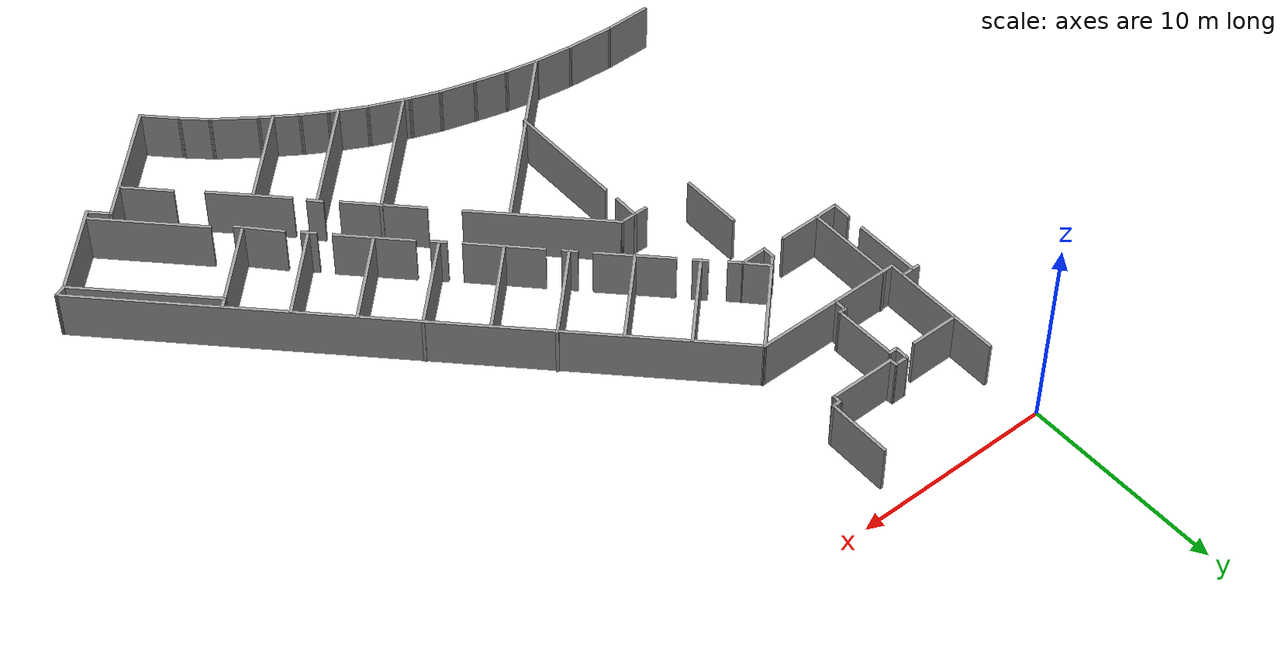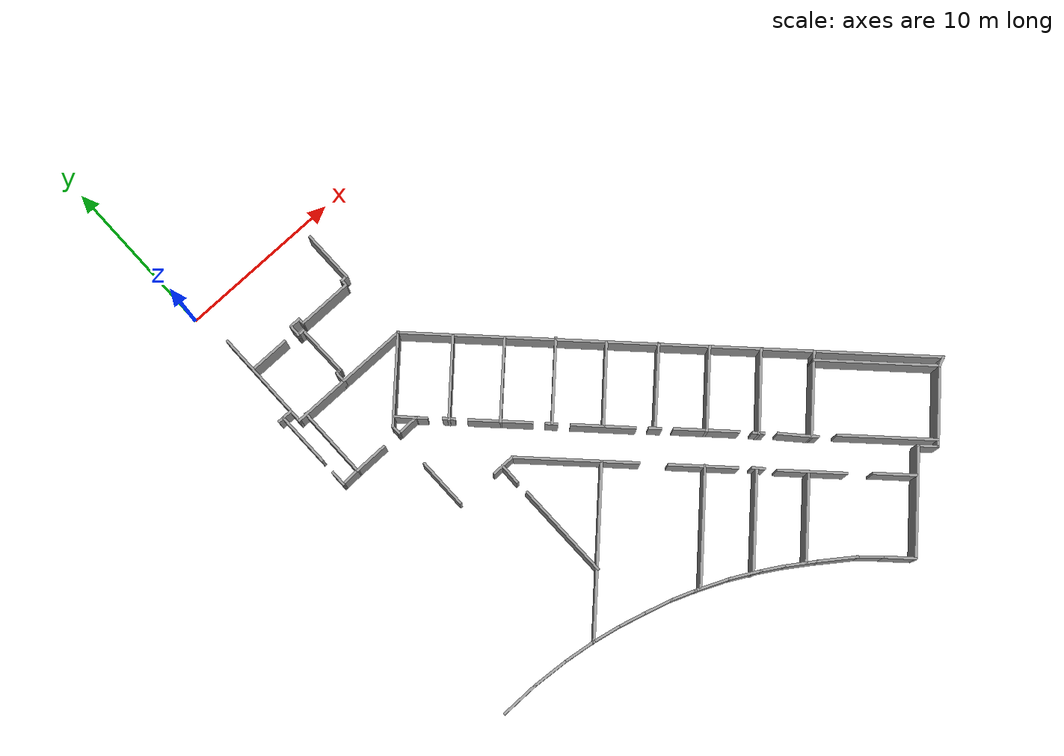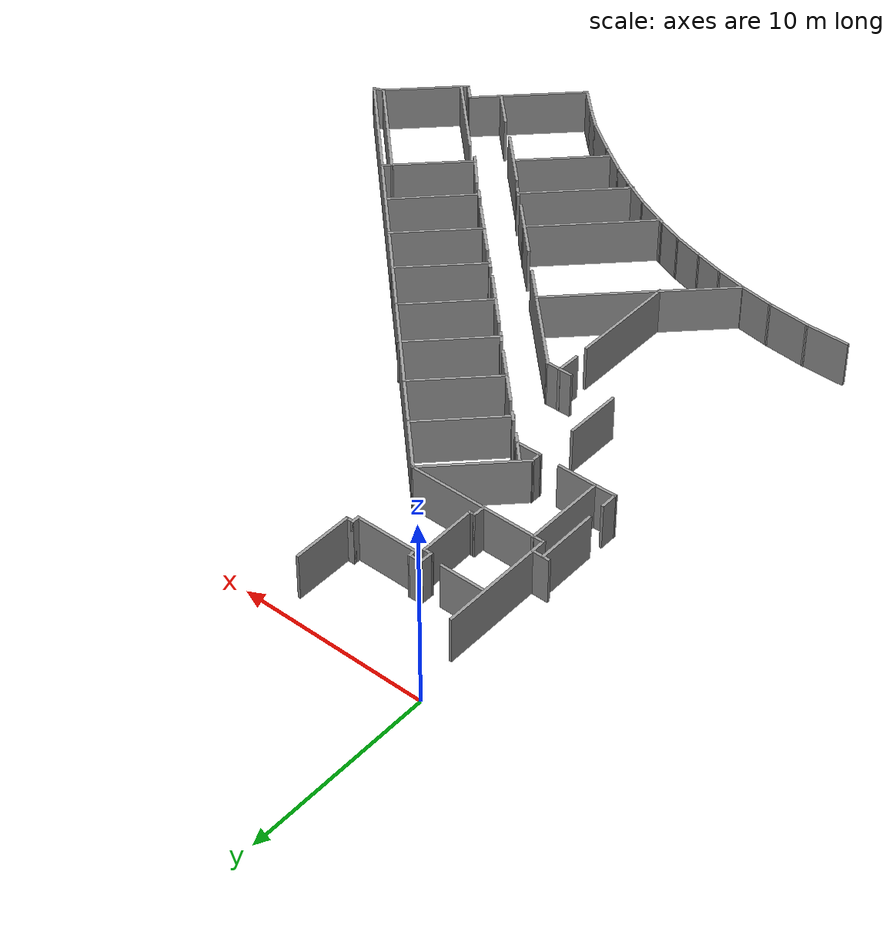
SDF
<sdf version="1.7">
 <model name="TI_1">
  <pose>-0.810812 4.85868 0 0 -0 0</pose>
  <link name="Wall_412">
   <collision name="Wall_412_Collision">
    <geometry><box><size>3.25 0.15 2.5</size></box></geometry>
    <pose>0 0 1.25 0 -0 0</pose>
   </collision>
   <visual name="Wall_412_Visual">
    <pose>0 0 1.25 0 -0 0</pose>
    <geometry><box><size>3.25 0.15 2.5</size></box></geometry>
    <material>
     <script><uri>file://media/materials/scripts/gazebo.material</uri><name>Gazebo/Grey</name></script>
     <ambient>1 1 1 1</ambient>
    </material>
    <meta><layer>0</layer></meta>
   </visual>
   <pose>8.80471 -7.66478 0 0 -0 -1.5708</pose>
  </link>
  <link name="Wall_413">
   <collision name="Wall_413_Collision">
    <geometry><box><size>0.5 0.15 2.5</size></box></geometry>
    <pose>0 0 1.25 0 -0 0</pose>
   </collision>
   <visual name="Wall_413_Visual">
    <pose>0 0 1.25 0 -0 0</pose>
    <geometry><box><size>0.5 0.15 2.5</size></box></geometry>
    <material>
     <script><uri>file://media/materials/scripts/gazebo.material</uri><name>Gazebo/Grey</name></script>
     <ambient>1 1 1 1</ambient>
    </material>
    <meta><layer>0</layer></meta>
   </visual>
   <pose>8.62971 -9.21478 0 0 -0 3.14159</pose>
  </link>
  <link name="Wall_414">
   <collision name="Wall_414_Collision">
    <geometry><box><size>0.5 0.15 2.5</size></box></geometry>
    <pose>0 0 1.25 0 -0 0</pose>
   </collision>
   <visual name="Wall_414_Visual">
    <pose>0 0 1.25 0 -0 0</pose>
    <geometry><box><size>0.5 0.15 2.5</size></box></geometry>
    <material>
     <script><uri>file://media/materials/scripts/gazebo.material</uri><name>Gazebo/Grey</name></script>
     <ambient>1 1 1 1</ambient>
    </material>
    <meta><layer>0</layer></meta>
   </visual>
   <pose>8.45471 -9.38978 0 0 -0 -1.5708</pose>
  </link>
  <link name="Wall_415">
   <collision name="Wall_415_Collision">
    <geometry><box><size>3.39279 0.15 2.5</size></box></geometry>
    <pose>0 0 1.25 0 -0 0</pose>
   </collision>
   <visual name="Wall_415_Visual">
    <pose>0 0 1.25 0 -0 0</pose>
    <geometry><box><size>3.39279 0.15 2.5</size></box></geometry>
    <material>
     <script><uri>file://media/materials/scripts/gazebo.material</uri><name>Gazebo/Grey</name></script>
     <ambient>1 1 1 1</ambient>
    </material>
    <meta><layer>0</layer></meta>
   </visual>
   <pose>6.83332 -9.56837 0 0 -0 -3.13938</pose>
  </link>
  <link name="Wall_416">
   <collision name="Wall_416_Collision">
    <geometry><box><size>0.477102 0.15 2.5</size></box></geometry>
    <pose>0 0 1.25 0 -0 0</pose>
   </collision>
   <visual name="Wall_416_Visual">
    <pose>0 0 1.25 0 -0 0</pose>
    <geometry><box><size>0.477102 0.15 2.5</size></box></geometry>
    <material>
     <script><uri>file://media/materials/scripts/gazebo.material</uri><name>Gazebo/Grey</name></script>
     <ambient>1 1 1 1</ambient>
    </material>
    <meta><layer>0</layer></meta>
   </visual>
   <pose>5.19712 -9.40907 0 0 -0 1.66146</pose>
  </link>
  <link name="Wall_417">
   <collision name="Wall_417_Collision">
    <geometry><box><size>0.757096 0.15 2.5</size></box></geometry>
    <pose>0 0 1.25 0 -0 0</pose>
   </collision>
   <visual name="Wall_417_Visual">
    <pose>0 0 1.25 0 -0 0</pose>
    <geometry><box><size>0.757096 0.15 2.5</size></box></geometry>
    <material>
     <script><uri>file://media/materials/scripts/gazebo.material</uri><name>Gazebo/Grey</name></script>
     <ambient>1 1 1 1</ambient>
    </material>
    <meta><layer>0</layer></meta>
   </visual>
   <pose>4.87876 -9.2462 0 0 -0 3.14159</pose>
  </link>
  <link name="Wall_418">
   <collision name="Wall_418_Collision">
    <geometry><box><size>0.801686 0.15 2.5</size></box></geometry>
    <pose>0 0 1.25 0 -0 0</pose>
   </collision>
   <visual name="Wall_418_Visual">
    <pose>0 0 1.25 0 -0 0</pose>
    <geometry><box><size>0.801686 0.15 2.5</size></box></geometry>
    <material>
     <script><uri>file://media/materials/scripts/gazebo.material</uri><name>Gazebo/Grey</name></script>
     <ambient>1 1 1 1</ambient>
    </material>
    <meta><layer>0</layer></meta>
   </visual>
   <pose>4.56781 -9.57195 0 0 -0 -1.59352</pose>
  </link>
  <link name="Wall_419">
   <collision name="Wall_419_Collision">
    <geometry><box><size>0.52018 0.15 2.5</size></box></geometry>
    <pose>0 0 1.25 0 -0 0</pose>
   </collision>
   <visual name="Wall_419_Visual">
    <pose>0 0 1.25 0 -0 0</pose>
    <geometry><box><size>0.52018 0.15 2.5</size></box></geometry>
    <material>
     <script><uri>file://media/materials/scripts/gazebo.material</uri><name>Gazebo/Grey</name></script>
     <ambient>1 1 1 1</ambient>
    </material>
    <meta><layer>0</layer></meta>
   </visual>
   <pose>4.7455 -9.89771 0 0 -0 0</pose>
  </link>
  <link name="Wall_423">
   <collision name="Wall_423_Collision">
    <geometry><box><size>6.25 0.15 2.5</size></box></geometry>
    <pose>0 0 1.25 0 -0 0</pose>
   </collision>
   <visual name="Wall_423_Visual">
    <pose>0 0 1.25 0 -0 0</pose>
    <geometry><box><size>6.25 0.15 2.5</size></box></geometry>
    <material>
     <script><uri>file://media/materials/scripts/gazebo.material</uri><name>Gazebo/Grey</name></script>
     <ambient>1 1 1 1</ambient>
    </material>
    <meta><layer>0</layer></meta>
   </visual>
   <pose>1.36092 -10.5303 0 0 -0 -1.5708</pose>
  </link>
  <link name="Wall_424">
   <collision name="Wall_424_Collision">
    <geometry><box><size>3.5 0.15 2.5</size></box></geometry>
    <pose>0 0 1.25 0 -0 0</pose>
   </collision>
   <visual name="Wall_424_Visual">
    <pose>0 0 1.25 0 -0 0</pose>
    <geometry><box><size>3.5 0.15 2.5</size></box></geometry>
    <material>
     <script><uri>file://media/materials/scripts/gazebo.material</uri><name>Gazebo/Grey</name></script>
     <ambient>1 1 1 1</ambient>
    </material>
    <meta><layer>0</layer></meta>
   </visual>
   <pose>3.03593 -13.5803 0 0 -0 0</pose>
  </link>
  <link name="Wall_425">
   <collision name="Wall_425_Collision">
    <geometry><box><size>0.75 0.15 2.5</size></box></geometry>
    <pose>0 0 1.25 0 -0 0</pose>
   </collision>
   <visual name="Wall_425_Visual">
    <pose>0 0 1.25 0 -0 0</pose>
    <geometry><box><size>0.75 0.15 2.5</size></box></geometry>
    <material>
     <script><uri>file://media/materials/scripts/gazebo.material</uri><name>Gazebo/Grey</name></script>
     <ambient>1 1 1 1</ambient>
    </material>
    <meta><layer>0</layer></meta>
   </visual>
   <pose>4.71092 -13.2803 0 0 -0 1.5708</pose>
  </link>
  <link name="Wall_426">
   <collision name="Wall_426_Collision">
    <geometry><box><size>0.25 0.15 2.5</size></box></geometry>
    <pose>0 0 1.25 0 -0 0</pose>
   </collision>
   <visual name="Wall_426_Visual">
    <pose>0 0 1.25 0 -0 0</pose>
    <geometry><box><size>0.25 0.15 2.5</size></box></geometry>
    <material>
     <script><uri>file://media/materials/scripts/gazebo.material</uri><name>Gazebo/Grey</name></script>
     <ambient>1 1 1 1</ambient>
    </material>
    <meta><layer>0</layer></meta>
   </visual>
   <pose>4.76093 -12.9803 0 0 -0 0</pose>
  </link>
  <link name="Wall_427">
   <collision name="Wall_427_Collision">
    <geometry><box><size>0.327028 0.15 2.5</size></box></geometry>
    <pose>0 0 1.25 0 -0 0</pose>
   </collision>
   <visual name="Wall_427_Visual">
    <pose>0 0 1.25 0 -0 0</pose>
    <geometry><box><size>0.327028 0.15 2.5</size></box></geometry>
    <material>
     <script><uri>file://media/materials/scripts/gazebo.material</uri><name>Gazebo/Grey</name></script>
     <ambient>1 1 1 1</ambient>
    </material>
    <meta><layer>0</layer></meta>
   </visual>
   <pose>4.89944 -12.9804 0 0 -0 -0.000793</pose>
  </link>
  <link name="Wall_428">
   <collision name="Wall_428_Collision">
    <geometry><box><size>3.23327 0.15 2.5</size></box></geometry>
    <pose>0 0 1.25 0 -0 0</pose>
   </collision>
   <visual name="Wall_428_Visual">
    <pose>0 0 1.25 0 -0 0</pose>
    <geometry><box><size>3.23327 0.15 2.5</size></box></geometry>
    <material>
     <script><uri>file://media/materials/scripts/gazebo.material</uri><name>Gazebo/Grey</name></script>
     <ambient>1 1 1 1</ambient>
    </material>
    <meta><layer>0</layer></meta>
   </visual>
   <pose>4.95927 -11.4391 0 0 -0 1.5894</pose>
  </link>
  <link name="Wall_430">
   <collision name="Wall_430_Collision">
    <geometry><box><size>2.5 0.15 2.5</size></box></geometry>
    <pose>0 0 1.25 0 -0 0</pose>
   </collision>
   <visual name="Wall_430_Visual">
    <pose>0 0 1.25 0 -0 0</pose>
    <geometry><box><size>2.5 0.15 2.5</size></box></geometry>
    <material>
     <script><uri>file://media/materials/scripts/gazebo.material</uri><name>Gazebo/Grey</name></script>
     <ambient>1 1 1 1</ambient>
    </material>
    <meta><layer>0</layer></meta>
   </visual>
   <pose>2.55295 -9.6429 0 0 -0 0</pose>
  </link>
  <link name="Wall_440">
   <collision name="Wall_440_Collision">
    <geometry><box><size>1 0.15 2.5</size></box></geometry>
    <pose>0 0 1.25 0 -0 0</pose>
   </collision>
   <visual name="Wall_440_Visual">
    <pose>0 0 1.25 0 -0 0</pose>
    <geometry><box><size>1 0.15 2.5</size></box></geometry>
    <material>
     <script><uri>file://media/materials/scripts/gazebo.material</uri><name>Gazebo/Grey</name></script>
     <ambient>1 1 1 1</ambient>
    </material>
    <meta><layer>0</layer></meta>
   </visual>
   <pose>0.924667 -12.8553 0 0 -0 3.14159</pose>
  </link>
  <link name="Wall_443">
   <collision name="Wall_443_Collision">
    <geometry><box><size>3.37077 0.15 2.5</size></box></geometry>
    <pose>0 0 1.25 0 -0 0</pose>
   </collision>
   <visual name="Wall_443_Visual">
    <pose>0 0 1.25 0 -0 0</pose>
    <geometry><box><size>3.37077 0.15 2.5</size></box></geometry>
    <material>
     <script><uri>file://media/materials/scripts/gazebo.material</uri><name>Gazebo/Grey</name></script>
     <ambient>1 1 1 1</ambient>
    </material>
    <meta><layer>0</layer></meta>
   </visual>
   <pose>0.795781 -14.4948 0 0 -0 1.57538</pose>
  </link>
  <link name="Wall_445">
   <collision name="Wall_445_Collision">
    <geometry><box><size>4.5 0.15 2.5</size></box></geometry>
    <pose>0 0 1.25 0 -0 0</pose>
   </collision>
   <visual name="Wall_445_Visual">
    <pose>0 0 1.25 0 -0 0</pose>
    <geometry><box><size>4.5 0.15 2.5</size></box></geometry>
    <material>
     <script><uri>file://media/materials/scripts/gazebo.material</uri><name>Gazebo/Grey</name></script>
     <ambient>1 1 1 1</ambient>
    </material>
    <meta><layer>0</layer></meta>
   </visual>
   <pose>1.8867 -15.7111 0 0 -0 -1.5708</pose>
  </link>
  <link name="Wall_446">
   <collision name="Wall_446_Collision">
    <geometry><box><size>2.14401 0.15 2.5</size></box></geometry>
    <pose>0 0 1.25 0 -0 0</pose>
   </collision>
   <visual name="Wall_446_Visual">
    <pose>0 0 1.25 0 -0 0</pose>
    <geometry><box><size>2.14401 0.15 2.5</size></box></geometry>
    <material>
     <script><uri>file://media/materials/scripts/gazebo.material</uri><name>Gazebo/Grey</name></script>
     <ambient>1 1 1 1</ambient>
    </material>
    <meta><layer>0</layer></meta>
   </visual>
   <pose>2.88369 -17.8823 0 0 -0 0.003776</pose>
  </link>
  <link name="Wall_448">
   <collision name="Wall_448_Collision">
    <geometry><box><size>1 0.15 2.5</size></box></geometry>
    <pose>0 0 1.25 0 -0 0</pose>
   </collision>
   <visual name="Wall_448_Visual">
    <pose>0 0 1.25 0 -0 0</pose>
    <geometry><box><size>1 0.15 2.5</size></box></geometry>
    <material>
     <script><uri>file://media/materials/scripts/gazebo.material</uri><name>Gazebo/Grey</name></script>
     <ambient>1 1 1 1</ambient>
    </material>
    <meta><layer>0</layer></meta>
   </visual>
   <pose>0.793692 -17.4912 0 0 -0 -1.5708</pose>
  </link>
  <link name="Wall_449">
   <collision name="Wall_449_Collision">
    <geometry><box><size>1.24342 0.15 2.5</size></box></geometry>
    <pose>0 0 1.25 0 -0 0</pose>
   </collision>
   <visual name="Wall_449_Visual">
    <pose>0 0 1.25 0 -0 0</pose>
    <geometry><box><size>1.24342 0.15 2.5</size></box></geometry>
    <material>
     <script><uri>file://media/materials/scripts/gazebo.material</uri><name>Gazebo/Grey</name></script>
     <ambient>1 1 1 1</ambient>
    </material>
    <meta><layer>0</layer></meta>
   </visual>
   <pose>1.34019 -17.9012 0 0 -0 0.027535</pose>
  </link>
  <link name="Wall_451">
   <collision name="Wall_451_Collision">
    <geometry><box><size>4.25 0.15 2.5</size></box></geometry>
    <pose>0 0 1.25 0 -0 0</pose>
   </collision>
   <visual name="Wall_451_Visual">
    <pose>0 0 1.25 0 -0 0</pose>
    <geometry><box><size>4.25 0.15 2.5</size></box></geometry>
    <material>
     <script><uri>file://media/materials/scripts/gazebo.material</uri><name>Gazebo/Grey</name></script>
     <ambient>1 1 1 1</ambient>
    </material>
    <meta><layer>0</layer></meta>
   </visual>
   <pose>6.76093 -13.5803 0 0 -0 0</pose>
  </link>
  <link name="Wall_452">
   <collision name="Wall_452_Collision">
    <geometry><box><size>5.5 0.15 2.5</size></box></geometry>
    <pose>0 0 1.25 0 -0 0</pose>
   </collision>
   <visual name="Wall_452_Visual">
    <pose>0 0 1.25 0 -0 0</pose>
    <geometry><box><size>5.5 0.15 2.5</size></box></geometry>
    <material>
     <script><uri>file://media/materials/scripts/gazebo.material</uri><name>Gazebo/Grey</name></script>
     <ambient>1 1 1 1</ambient>
    </material>
    <meta><layer>0</layer></meta>
   </visual>
   <pose>6.91941 -15.4718 0 0 -0 -2.35619</pose>
  </link>
  <link name="Wall_453">
   <collision name="Wall_453_Collision">
    <geometry><box><size>0.679853 0.15 2.5</size></box></geometry>
    <pose>0 0 1.25 0 -0 0</pose>
   </collision>
   <visual name="Wall_453_Visual">
    <pose>0 0 1.25 0 -0 0</pose>
    <geometry><box><size>0.679853 0.15 2.5</size></box></geometry>
    <material>
     <script><uri>file://media/materials/scripts/gazebo.material</uri><name>Gazebo/Grey</name></script>
     <ambient>1 1 1 1</ambient>
    </material>
    <meta><layer>0</layer></meta>
   </visual>
   <pose>5.02529 -17.6282 0 0 -0 -1.58066</pose>
  </link>
  <link name="Wall_454">
   <collision name="Wall_454_Collision">
    <geometry><box><size>1.43457 0.15 2.5</size></box></geometry>
    <pose>0 0 1.25 0 -0 0</pose>
   </collision>
   <visual name="Wall_454_Visual">
    <pose>0 0 1.25 0 -0 0</pose>
    <geometry><box><size>1.43457 0.15 2.5</size></box></geometry>
    <material>
     <script><uri>file://media/materials/scripts/gazebo.material</uri><name>Gazebo/Grey</name></script>
     <ambient>1 1 1 1</ambient>
    </material>
    <meta><layer>0</layer></meta>
   </visual>
   <pose>5.66486 -17.882 0 0 -0 0.01739</pose>
  </link>
  <link name="Wall_455">
   <collision name="Wall_455_Collision">
    <geometry><box><size>1.37431 0.15 2.5</size></box></geometry>
    <pose>0 0 1.25 0 -0 0</pose>
   </collision>
   <visual name="Wall_455_Visual">
    <pose>0 0 1.25 0 -0 0</pose>
    <geometry><box><size>1.37431 0.15 2.5</size></box></geometry>
    <material>
     <script><uri>file://media/materials/scripts/gazebo.material</uri><name>Gazebo/Grey</name></script>
     <ambient>1 1 1 1</ambient>
    </material>
    <meta><layer>0</layer></meta>
   </visual>
   <pose>5.88265 -17.4297 0 0 -0 2.33684</pose>
  </link>
  <link name="Wall_490">
   <collision name="Wall_490_Collision">
    <geometry><box><size>2.39778 0.15 2.5</size></box></geometry>
    <pose>0 0 1.25 0 -0 0</pose>
   </collision>
   <visual name="Wall_490_Visual">
    <pose>0 0 1.25 0 -0 0</pose>
    <geometry><box><size>2.39778 0.15 2.5</size></box></geometry>
    <material>
     <script><uri>file://media/materials/scripts/gazebo.material</uri><name>Gazebo/Grey</name></script>
     <ambient>1 1 1 1</ambient>
    </material>
    <meta><layer>0</layer></meta>
   </visual>
   <pose>0.024104 -33.442 0 0 -0 0.00565</pose>
  </link>
  <link name="Wall_491">
   <collision name="Wall_491_Collision">
    <geometry><box><size>2.4038 0.15 2.5</size></box></geometry>
    <pose>0 0 1.25 0 -0 0</pose>
   </collision>
   <visual name="Wall_491_Visual">
    <pose>0 0 1.25 0 -0 0</pose>
    <geometry><box><size>2.4038 0.15 2.5</size></box></geometry>
    <material>
     <script><uri>file://media/materials/scripts/gazebo.material</uri><name>Gazebo/Grey</name></script>
     <ambient>1 1 1 1</ambient>
    </material>
    <meta><layer>0</layer></meta>
   </visual>
   <pose>2.27185 -33.5182 0 0 -0 -0.073315</pose>
  </link>
  <link name="Wall_492">
   <collision name="Wall_492_Collision">
    <geometry><box><size>1.98365 0.15 2.5</size></box></geometry>
    <pose>0 0 1.25 0 -0 0</pose>
   </collision>
   <visual name="Wall_492_Visual">
    <pose>0 0 1.25 0 -0 0</pose>
    <geometry><box><size>1.98365 0.15 2.5</size></box></geometry>
    <material>
     <script><uri>file://media/materials/scripts/gazebo.material</uri><name>Gazebo/Grey</name></script>
     <ambient>1 1 1 1</ambient>
    </material>
    <meta><layer>0</layer></meta>
   </visual>
   <pose>4.3037 -33.7278 0 0 -0 -0.138959</pose>
  </link>
  <link name="Wall_493">
   <collision name="Wall_493_Collision">
    <geometry><box><size>1.74393 0.15 2.5</size></box></geometry>
    <pose>0 0 1.25 0 -0 0</pose>
   </collision>
   <visual name="Wall_493_Visual">
    <pose>0 0 1.25 0 -0 0</pose>
    <geometry><box><size>1.74393 0.15 2.5</size></box></geometry>
    <material>
     <script><uri>file://media/materials/scripts/gazebo.material</uri><name>Gazebo/Grey</name></script>
     <ambient>1 1 1 1</ambient>
    </material>
    <meta><layer>0</layer></meta>
   </visual>
   <pose>5.99269 -34.0135 0 0 -0 -0.200521</pose>
  </link>
  <link name="Wall_495">
   <collision name="Wall_495_Collision">
    <geometry><box><size>1.75 0.15 2.5</size></box></geometry>
    <pose>0 0 1.25 0 -0 0</pose>
   </collision>
   <visual name="Wall_495_Visual">
    <pose>0 0 1.25 0 -0 0</pose>
    <geometry><box><size>1.75 0.15 2.5</size></box></geometry>
    <material>
     <script><uri>file://media/materials/scripts/gazebo.material</uri><name>Gazebo/Grey</name></script>
     <ambient>1 1 1 1</ambient>
    </material>
    <meta><layer>0</layer></meta>
   </visual>
   <pose>7.54642 -34.3793 0 0 -0 -0.261799</pose>
  </link>
  <link name="Wall_496">
   <collision name="Wall_496_Collision">
    <geometry><box><size>1.85927 0.15 2.5</size></box></geometry>
    <pose>0 0 1.25 0 -0 0</pose>
   </collision>
   <visual name="Wall_496_Visual">
    <pose>0 0 1.25 0 -0 0</pose>
    <geometry><box><size>1.85927 0.15 2.5</size></box></geometry>
    <material>
     <script><uri>file://media/materials/scripts/gazebo.material</uri><name>Gazebo/Grey</name></script>
     <ambient>1 1 1 1</ambient>
    </material>
    <meta><layer>0</layer></meta>
   </visual>
   <pose>9.14001 -34.8242 0 0 -0 -0.282111</pose>
  </link>
  <link name="Wall_497">
   <collision name="Wall_497_Collision">
    <geometry><box><size>1.60658 0.15 2.5</size></box></geometry>
    <pose>0 0 1.25 0 -0 0</pose>
   </collision>
   <visual name="Wall_497_Visual">
    <pose>0 0 1.25 0 -0 0</pose>
    <geometry><box><size>1.60658 0.15 2.5</size></box></geometry>
    <material>
     <script><uri>file://media/materials/scripts/gazebo.material</uri><name>Gazebo/Grey</name></script>
     <ambient>1 1 1 1</ambient>
    </material>
    <meta><layer>0</layer></meta>
   </visual>
   <pose>10.641 -35.3225 0 0 -0 -0.365518</pose>
  </link>
  <link name="Wall_498">
   <collision name="Wall_498_Collision">
    <geometry><box><size>2.16563 0.15 2.5</size></box></geometry>
    <pose>0 0 1.25 0 -0 0</pose>
   </collision>
   <visual name="Wall_498_Visual">
    <pose>0 0 1.25 0 -0 0</pose>
    <geometry><box><size>2.16563 0.15 2.5</size></box></geometry>
    <material>
     <script><uri>file://media/materials/scripts/gazebo.material</uri><name>Gazebo/Grey</name></script>
     <ambient>1 1 1 1</ambient>
    </material>
    <meta><layer>0</layer></meta>
   </visual>
   <pose>12.2449 -35.9859 0 0 -0 -0.411456</pose>
  </link>
  <link name="Wall_499">
   <collision name="Wall_499_Collision">
    <geometry><box><size>1.96086 0.15 2.5</size></box></geometry>
    <pose>0 0 1.25 0 -0 0</pose>
   </collision>
   <visual name="Wall_499_Visual">
    <pose>0 0 1.25 0 -0 0</pose>
    <geometry><box><size>1.96086 0.15 2.5</size></box></geometry>
    <material>
     <script><uri>file://media/materials/scripts/gazebo.material</uri><name>Gazebo/Grey</name></script>
     <ambient>1 1 1 1</ambient>
    </material>
    <meta><layer>0</layer></meta>
   </visual>
   <pose>13.9664 -36.8172 0 0 -0 -0.492685</pose>
  </link>
  <link name="Wall_500">
   <collision name="Wall_500_Collision">
    <geometry><box><size>1.46052 0.15 2.5</size></box></geometry>
    <pose>0 0 1.25 0 -0 0</pose>
   </collision>
   <visual name="Wall_500_Visual">
    <pose>0 0 1.25 0 -0 0</pose>
    <geometry><box><size>1.46052 0.15 2.5</size></box></geometry>
    <material>
     <script><uri>file://media/materials/scripts/gazebo.material</uri><name>Gazebo/Grey</name></script>
     <ambient>1 1 1 1</ambient>
    </material>
    <meta><layer>0</layer></meta>
   </visual>
   <pose>15.3267 -37.5814 0 0 -0 -0.538222</pose>
  </link>
  <link name="Wall_501">
   <collision name="Wall_501_Collision">
    <geometry><box><size>2.05986 0.15 2.5</size></box></geometry>
    <pose>0 0 1.25 0 -0 0</pose>
   </collision>
   <visual name="Wall_501_Visual">
    <pose>0 0 1.25 0 -0 0</pose>
    <geometry><box><size>2.05986 0.15 2.5</size></box></geometry>
    <material>
     <script><uri>file://media/materials/scripts/gazebo.material</uri><name>Gazebo/Grey</name></script>
     <ambient>1 1 1 1</ambient>
    </material>
    <meta><layer>0</layer></meta>
   </visual>
   <pose>16.6787 -38.4547 0 0 -0 -0.597758</pose>
  </link>
  <link name="Wall_502">
   <collision name="Wall_502_Collision">
    <geometry><box><size>2.37381 0.15 2.5</size></box></geometry>
    <pose>0 0 1.25 0 -0 0</pose>
   </collision>
   <visual name="Wall_502_Visual">
    <pose>0 0 1.25 0 -0 0</pose>
    <geometry><box><size>2.37381 0.15 2.5</size></box></geometry>
    <material>
     <script><uri>file://media/materials/scripts/gazebo.material</uri><name>Gazebo/Grey</name></script>
     <ambient>1 1 1 1</ambient>
    </material>
    <meta><layer>0</layer></meta>
   </visual>
   <pose>18.3665 -39.6471 0 0 -0 -0.629907</pose>
  </link>
  <link name="Wall_503">
   <collision name="Wall_503_Collision">
    <geometry><box><size>1.56444 0.15 2.5</size></box></geometry>
    <pose>0 0 1.25 0 -0 0</pose>
   </collision>
   <visual name="Wall_503_Visual">
    <pose>0 0 1.25 0 -0 0</pose>
    <geometry><box><size>1.56444 0.15 2.5</size></box></geometry>
    <material>
     <script><uri>file://media/materials/scripts/gazebo.material</uri><name>Gazebo/Grey</name></script>
     <ambient>1 1 1 1</ambient>
    </material>
    <meta><layer>0</layer></meta>
   </visual>
   <pose>19.7857 -40.7807 0 0 -0 -0.743406</pose>
  </link>
  <link name="Wall_505">
   <collision name="Wall_505_Collision">
    <geometry><box><size>2 0.15 2.5</size></box></geometry>
    <pose>0 0 1.25 0 -0 0</pose>
   </collision>
   <visual name="Wall_505_Visual">
    <pose>0 0 1.25 0 -0 0</pose>
    <geometry><box><size>2 0.15 2.5</size></box></geometry>
    <material>
     <script><uri>file://media/materials/scripts/gazebo.material</uri><name>Gazebo/Grey</name></script>
     <ambient>1 1 1 1</ambient>
    </material>
    <meta><layer>0</layer></meta>
   </visual>
   <pose>20.9604 -41.9134 0 0 -0 -0.785398</pose>
  </link>
  <link name="Wall_506">
   <collision name="Wall_506_Collision">
    <geometry><box><size>6.5 0.15 2.5</size></box></geometry>
    <pose>0 0 1.25 0 -0 0</pose>
   </collision>
   <visual name="Wall_506_Visual">
    <pose>0 0 1.25 0 -0 0</pose>
    <geometry><box><size>6.5 0.15 2.5</size></box></geometry>
    <material>
     <script><uri>file://media/materials/scripts/gazebo.material</uri><name>Gazebo/Grey</name></script>
     <ambient>1 1 1 1</ambient>
    </material>
    <meta><layer>0</layer></meta>
   </visual>
   <pose>23.8595 -40.3224 0 0 -0 0.785398</pose>
  </link>
  <link name="Wall_508">
   <collision name="Wall_508_Collision">
    <geometry><box><size>1.25 0.15 2.5</size></box></geometry>
    <pose>0 0 1.25 0 -0 0</pose>
   </collision>
   <visual name="Wall_508_Visual">
    <pose>0 0 1.25 0 -0 0</pose>
    <geometry><box><size>1.25 0.15 2.5</size></box></geometry>
    <material>
     <script><uri>file://media/materials/scripts/gazebo.material</uri><name>Gazebo/Grey</name></script>
     <ambient>1 1 1 1</ambient>
    </material>
    <meta><layer>0</layer></meta>
   </visual>
   <pose>26.4935 -38.4663 0 0 -0 -0.785398</pose>
  </link>
  <link name="Wall_509">
   <collision name="Wall_509_Collision">
    <geometry><box><size>4.75 0.15 2.5</size></box></geometry>
    <pose>0 0 1.25 0 -0 0</pose>
   </collision>
   <visual name="Wall_509_Visual">
    <pose>0 0 1.25 0 -0 0</pose>
    <geometry><box><size>4.75 0.15 2.5</size></box></geometry>
    <material>
     <script><uri>file://media/materials/scripts/gazebo.material</uri><name>Gazebo/Grey</name></script>
     <ambient>1 1 1 1</ambient>
    </material>
    <meta><layer>0</layer></meta>
   </visual>
   <pose>28.5088 -37.2289 0 0 -0 0.785398</pose>
  </link>
  <link name="Wall_512">
   <collision name="Wall_512_Collision">
    <geometry><box><size>7.25 0.15 2.5</size></box></geometry>
    <pose>0 0 1.25 0 -0 0</pose>
   </collision>
   <visual name="Wall_512_Visual">
    <pose>0 0 1.25 0 -0 0</pose>
    <geometry><box><size>7.25 0.15 2.5</size></box></geometry>
    <material>
     <script><uri>file://media/materials/scripts/gazebo.material</uri><name>Gazebo/Grey</name></script>
     <ambient>1 1 1 1</ambient>
    </material>
    <meta><layer>0</layer></meta>
   </visual>
   <pose>27.6249 -33.0923 0 0 -0 2.35619</pose>
  </link>
  <link name="Wall_513">
   <collision name="Wall_513_Collision">
    <geometry><box><size>4.5 0.15 2.5</size></box></geometry>
    <pose>0 0 1.25 0 -0 0</pose>
   </collision>
   <visual name="Wall_513_Visual">
    <pose>0 0 1.25 0 -0 0</pose>
    <geometry><box><size>4.5 0.15 2.5</size></box></geometry>
    <material>
     <script><uri>file://media/materials/scripts/gazebo.material</uri><name>Gazebo/Grey</name></script>
     <ambient>1 1 1 1</ambient>
    </material>
    <meta><layer>0</layer></meta>
   </visual>
   <pose>23.5767 -32.12 0 0 -0 -2.35619</pose>
  </link>
  <link name="Wall_514">
   <collision name="Wall_514_Collision">
    <geometry><box><size>0.5 0.15 2.5</size></box></geometry>
    <pose>0 0 1.25 0 -0 0</pose>
   </collision>
   <visual name="Wall_514_Visual">
    <pose>0 0 1.25 0 -0 0</pose>
    <geometry><box><size>0.5 0.15 2.5</size></box></geometry>
    <material>
     <script><uri>file://media/materials/scripts/gazebo.material</uri><name>Gazebo/Grey</name></script>
     <ambient>1 1 1 1</ambient>
    </material>
    <meta><layer>0</layer></meta>
   </visual>
   <pose>22.1625 -33.7817 0 0 -0 -0.785398</pose>
  </link>
  <link name="Wall_516">
   <collision name="Wall_516_Collision">
    <geometry><box><size>5.75 0.15 2.5</size></box></geometry>
    <pose>0 0 1.25 0 -0 0</pose>
   </collision>
   <visual name="Wall_516_Visual">
    <pose>0 0 1.25 0 -0 0</pose>
    <geometry><box><size>5.75 0.15 2.5</size></box></geometry>
    <material>
     <script><uri>file://media/materials/scripts/gazebo.material</uri><name>Gazebo/Grey</name></script>
     <ambient>1 1 1 1</ambient>
    </material>
    <meta><layer>0</layer></meta>
   </visual>
   <pose>25.1477 -36.5792 0 0 -0 -0.785398</pose>
  </link>
  <link name="Wall_518">
   <collision name="Wall_518_Collision">
    <geometry><box><size>31 0.15 2.5</size></box></geometry>
    <pose>0 0 1.25 0 -0 0</pose>
   </collision>
   <visual name="Wall_518_Visual">
    <pose>0 0 1.25 0 -0 0</pose>
    <geometry><box><size>31 0.15 2.5</size></box></geometry>
    <material>
     <script><uri>file://media/materials/scripts/gazebo.material</uri><name>Gazebo/Grey</name></script>
     <ambient>1 1 1 1</ambient>
    </material>
    <meta><layer>0</layer></meta>
   </visual>
   <pose>19.718 -24.4874 0 0 -0 -0.785398</pose>
  </link>
  <link name="Wall_520">
   <collision name="Wall_520_Collision">
    <geometry><box><size>0.682364 0.15 2.5</size></box></geometry>
    <pose>0 0 1.25 0 -0 0</pose>
   </collision>
   <visual name="Wall_520_Visual">
    <pose>0 0 1.25 0 -0 0</pose>
    <geometry><box><size>0.682364 0.15 2.5</size></box></geometry>
    <material>
     <script><uri>file://media/materials/scripts/gazebo.material</uri><name>Gazebo/Grey</name></script>
     <ambient>1 1 1 1</ambient>
    </material>
    <meta><layer>0</layer></meta>
   </visual>
   <pose>30.3801 -35.4985 0 0 -0 -2.74028</pose>
  </link>
  <link name="Wall_522">
   <collision name="Wall_522_Collision">
    <geometry><box><size>0.613895 0.15 2.5</size></box></geometry>
    <pose>0 0 1.25 0 -0 0</pose>
   </collision>
   <visual name="Wall_522_Visual">
    <pose>0 0 1.25 0 -0 0</pose>
    <geometry><box><size>0.613895 0.15 2.5</size></box></geometry>
    <material>
     <script><uri>file://media/materials/scripts/gazebo.material</uri><name>Gazebo/Grey</name></script>
     <ambient>1 1 1 1</ambient>
    </material>
    <meta><layer>0</layer></meta>
   </visual>
   <pose>25.2821 -30.4215 0 0 -0 0.764283</pose>
  </link>
  <link name="Wall_524">
   <collision name="Wall_524_Collision">
    <geometry><box><size>0.75 0.15 2.5</size></box></geometry>
    <pose>0 0 1.25 0 -0 0</pose>
   </collision>
   <visual name="Wall_524_Visual">
    <pose>0 0 1.25 0 -0 0</pose>
    <geometry><box><size>0.75 0.15 2.5</size></box></geometry>
    <material>
     <script><uri>file://media/materials/scripts/gazebo.material</uri><name>Gazebo/Grey</name></script>
     <ambient>1 1 1 1</ambient>
    </material>
    <meta><layer>0</layer></meta>
   </visual>
   <pose>6.51918 -18.0829 0 0 -0 -0.785398</pose>
  </link>
  <link name="Wall_526">
   <collision name="Wall_526_Collision">
    <geometry><box><size>4.90632 0.15 2.5</size></box></geometry>
    <pose>0 0 1.25 0 -0 0</pose>
   </collision>
   <visual name="Wall_526_Visual">
    <pose>0 0 1.25 0 -0 0</pose>
    <geometry><box><size>4.90632 0.15 2.5</size></box></geometry>
    <material>
     <script><uri>file://media/materials/scripts/gazebo.material</uri><name>Gazebo/Grey</name></script>
     <ambient>1 1 1 1</ambient>
    </material>
    <meta><layer>0</layer></meta>
   </visual>
   <pose>9.29625 -17.5029 0 0 -0 -2.35409</pose>
  </link>
  <link name="Wall_528">
   <collision name="Wall_528_Collision">
    <geometry><box><size>4.92634 0.15 2.5</size></box></geometry>
    <pose>0 0 1.25 0 -0 0</pose>
   </collision>
   <visual name="Wall_528_Visual">
    <pose>0 0 1.25 0 -0 0</pose>
    <geometry><box><size>4.92634 0.15 2.5</size></box></geometry>
    <material>
     <script><uri>file://media/materials/scripts/gazebo.material</uri><name>Gazebo/Grey</name></script>
     <ambient>1 1 1 1</ambient>
    </material>
    <meta><layer>0</layer></meta>
   </visual>
   <pose>11.3779 -19.5421 0 0 -0 0.783302</pose>
  </link>
  <link name="Wall_530">
   <collision name="Wall_530_Collision">
    <geometry><box><size>0.73077 0.15 2.5</size></box></geometry>
    <pose>0 0 1.25 0 -0 0</pose>
   </collision>
   <visual name="Wall_530_Visual">
    <pose>0 0 1.25 0 -0 0</pose>
    <geometry><box><size>0.73077 0.15 2.5</size></box></geometry>
    <material>
     <script><uri>file://media/materials/scripts/gazebo.material</uri><name>Gazebo/Grey</name></script>
     <ambient>1 1 1 1</ambient>
    </material>
    <meta><layer>0</layer></meta>
   </visual>
   <pose>7.63942 -19.1668 0 0 -0 -0.785398</pose>
  </link>
  <link name="Wall_532">
   <collision name="Wall_532_Collision">
    <geometry><box><size>3.71473 0.15 2.5</size></box></geometry>
    <pose>0 0 1.25 0 -0 0</pose>
   </collision>
   <visual name="Wall_532_Visual">
    <pose>0 0 1.25 0 -0 0</pose>
    <geometry><box><size>3.71473 0.15 2.5</size></box></geometry>
    <material>
     <script><uri>file://media/materials/scripts/gazebo.material</uri><name>Gazebo/Grey</name></script>
     <ambient>1 1 1 1</ambient>
    </material>
    <meta><layer>0</layer></meta>
   </visual>
   <pose>9.68568 -21.2272 0 0 -0 -0.785398</pose>
  </link>
  <link name="Wall_535">
   <collision name="Wall_535_Collision">
    <geometry><box><size>5 0.15 2.5</size></box></geometry>
    <pose>0 0 1.25 0 -0 0</pose>
   </collision>
   <visual name="Wall_535_Visual">
    <pose>0 0 1.25 0 -0 0</pose>
    <geometry><box><size>5 0.15 2.5</size></box></geometry>
    <material>
     <script><uri>file://media/materials/scripts/gazebo.material</uri><name>Gazebo/Grey</name></script>
     <ambient>1 1 1 1</ambient>
    </material>
    <meta><layer>0</layer></meta>
   </visual>
   <pose>13.4679 -21.5658 0 0 -0 0.785398</pose>
  </link>
  <link name="Wall_537">
   <collision name="Wall_537_Collision">
    <geometry><box><size>4.91636 0.15 2.5</size></box></geometry>
    <pose>0 0 1.25 0 -0 0</pose>
   </collision>
   <visual name="Wall_537_Visual">
    <pose>0 0 1.25 0 -0 0</pose>
    <geometry><box><size>4.91636 0.15 2.5</size></box></geometry>
    <material>
     <script><uri>file://media/materials/scripts/gazebo.material</uri><name>Gazebo/Grey</name></script>
     <ambient>1 1 1 1</ambient>
    </material>
    <meta><layer>0</layer></meta>
   </visual>
   <pose>15.4846 -23.6275 0 0 -0 0.7896</pose>
  </link>
  <link name="Wall_540">
   <collision name="Wall_540_Collision">
    <geometry><box><size>0.75113 0.15 2.5</size></box></geometry>
    <pose>0 0 1.25 0 -0 0</pose>
   </collision>
   <visual name="Wall_540_Visual">
    <pose>0 0 1.25 0 -0 0</pose>
    <geometry><box><size>0.75113 0.15 2.5</size></box></geometry>
    <material>
     <script><uri>file://media/materials/scripts/gazebo.material</uri><name>Gazebo/Grey</name></script>
     <ambient>1 1 1 1</ambient>
    </material>
    <meta><layer>0</layer></meta>
   </visual>
   <pose>11.7178 -23.2735 0 0 -0 -0.818719</pose>
  </link>
  <link name="Wall_542">
   <collision name="Wall_542_Collision">
    <geometry><box><size>3.73481 0.15 2.5</size></box></geometry>
    <pose>0 0 1.25 0 -0 0</pose>
   </collision>
   <visual name="Wall_542_Visual">
    <pose>0 0 1.25 0 -0 0</pose>
    <geometry><box><size>3.73481 0.15 2.5</size></box></geometry>
    <material>
     <script><uri>file://media/materials/scripts/gazebo.material</uri><name>Gazebo/Grey</name></script>
     <ambient>1 1 1 1</ambient>
    </material>
    <meta><layer>0</layer></meta>
   </visual>
   <pose>13.7782 -25.348 0 0 -0 -0.790985</pose>
  </link>
  <link name="Wall_545">
   <collision name="Wall_545_Collision">
    <geometry><box><size>4.94645 0.15 2.5</size></box></geometry>
    <pose>0 0 1.25 0 -0 0</pose>
   </collision>
   <visual name="Wall_545_Visual">
    <pose>0 0 1.25 0 -0 0</pose>
    <geometry><box><size>4.94645 0.15 2.5</size></box></geometry>
    <material>
     <script><uri>file://media/materials/scripts/gazebo.material</uri><name>Gazebo/Grey</name></script>
     <ambient>1 1 1 1</ambient>
    </material>
    <meta><layer>0</layer></meta>
   </visual>
   <pose>17.5662 -25.6879 0 0 -0 0.779135</pose>
  </link>
  <link name="Wall_547">
   <collision name="Wall_547_Collision">
    <geometry><box><size>4.92634 0.15 2.5</size></box></geometry>
    <pose>0 0 1.25 0 -0 0</pose>
   </collision>
   <visual name="Wall_547_Visual">
    <pose>0 0 1.25 0 -0 0</pose>
    <geometry><box><size>4.92634 0.15 2.5</size></box></geometry>
    <material>
     <script><uri>file://media/materials/scripts/gazebo.material</uri><name>Gazebo/Grey</name></script>
     <ambient>1 1 1 1</ambient>
    </material>
    <meta><layer>0</layer></meta>
   </visual>
   <pose>19.5983 -27.7483 0 0 -0 0.787495</pose>
  </link>
  <link name="Wall_549">
   <collision name="Wall_549_Collision">
    <geometry><box><size>0.770823 0.15 2.5</size></box></geometry>
    <pose>0 0 1.25 0 -0 0</pose>
   </collision>
   <visual name="Wall_549_Visual">
    <pose>0 0 1.25 0 -0 0</pose>
    <geometry><box><size>0.770823 0.15 2.5</size></box></geometry>
    <material>
     <script><uri>file://media/materials/scripts/gazebo.material</uri><name>Gazebo/Grey</name></script>
     <ambient>1 1 1 1</ambient>
    </material>
    <meta><layer>0</layer></meta>
   </visual>
   <pose>15.8528 -27.3943 0 0 -0 -0.785398</pose>
  </link>
  <link name="Wall_551">
   <collision name="Wall_551_Collision">
    <geometry><box><size>3.75 0.15 2.5</size></box></geometry>
    <pose>0 0 1.25 0 -0 0</pose>
   </collision>
   <visual name="Wall_551_Visual">
    <pose>0 0 1.25 0 -0 0</pose>
    <geometry><box><size>3.75 0.15 2.5</size></box></geometry>
    <material>
     <script><uri>file://media/materials/scripts/gazebo.material</uri><name>Gazebo/Grey</name></script>
     <ambient>1 1 1 1</ambient>
    </material>
    <meta><layer>0</layer></meta>
   </visual>
   <pose>17.9115 -29.4247 0 0 -0 -0.785398</pose>
  </link>
  <link name="Wall_553">
   <collision name="Wall_553_Collision">
    <geometry><box><size>4.91649 0.15 2.5</size></box></geometry>
    <pose>0 0 1.25 0 -0 0</pose>
   </collision>
   <visual name="Wall_553_Visual">
    <pose>0 0 1.25 0 -0 0</pose>
    <geometry><box><size>4.91649 0.15 2.5</size></box></geometry>
    <material>
     <script><uri>file://media/materials/scripts/gazebo.material</uri><name>Gazebo/Grey</name></script>
     <ambient>1 1 1 1</ambient>
    </material>
    <meta><layer>0</layer></meta>
   </visual>
   <pose>21.6516 -29.8371 0 0 -0 -2.34779</pose>
  </link>
  <link name="Wall_555">
   <collision name="Wall_555_Collision">
    <geometry><box><size>0.75 0.15 2.5</size></box></geometry>
    <pose>0 0 1.25 0 -0 0</pose>
   </collision>
   <visual name="Wall_555_Visual">
    <pose>0 0 1.25 0 -0 0</pose>
    <geometry><box><size>0.75 0.15 2.5</size></box></geometry>
    <material>
     <script><uri>file://media/materials/scripts/gazebo.material</uri><name>Gazebo/Grey</name></script>
     <ambient>1 1 1 1</ambient>
    </material>
    <meta><layer>0</layer></meta>
   </visual>
   <pose>19.9662 -31.5078 0 0 -0 -0.785398</pose>
  </link>
  <link name="Wall_557">
   <collision name="Wall_557_Collision">
    <geometry><box><size>2.01553 0.15 2.5</size></box></geometry>
    <pose>0 0 1.25 0 -0 0</pose>
   </collision>
   <visual name="Wall_557_Visual">
    <pose>0 0 1.25 0 -0 0</pose>
    <geometry><box><size>2.01553 0.15 2.5</size></box></geometry>
    <material>
     <script><uri>file://media/materials/scripts/gazebo.material</uri><name>Gazebo/Grey</name></script>
     <ambient>1 1 1 1</ambient>
    </material>
    <meta><layer>0</layer></meta>
   </visual>
   <pose>21.4062 -32.9724 0 0 -0 -0.82559</pose>
  </link>
  <link name="Wall_559">
   <collision name="Wall_559_Collision">
    <geometry><box><size>2.5 0.15 2.5</size></box></geometry>
    <pose>0 0 1.25 0 -0 0</pose>
   </collision>
   <visual name="Wall_559_Visual">
    <pose>0 0 1.25 0 -0 0</pose>
    <geometry><box><size>2.5 0.15 2.5</size></box></geometry>
    <material>
     <script><uri>file://media/materials/scripts/gazebo.material</uri><name>Gazebo/Grey</name></script>
     <ambient>1 1 1 1</ambient>
    </material>
    <meta><layer>0</layer></meta>
   </visual>
   <pose>24.0159 -38.3674 0 0 -0 2.35619</pose>
  </link>
  <link name="Wall_561">
   <collision name="Wall_561_Collision">
    <geometry><box><size>4 0.15 2.5</size></box></geometry>
    <pose>0 0 1.25 0 -0 0</pose>
   </collision>
   <visual name="Wall_561_Visual">
    <pose>0 0 1.25 0 -0 0</pose>
    <geometry><box><size>4 0.15 2.5</size></box></geometry>
    <material>
     <script><uri>file://media/materials/scripts/gazebo.material</uri><name>Gazebo/Grey</name></script>
     <ambient>1 1 1 1</ambient>
    </material>
    <meta><layer>0</layer></meta>
   </visual>
   <pose>20.6845 -35.1337 0 0 -0 2.35619</pose>
  </link>
  <link name="Wall_563">
   <collision name="Wall_563_Collision">
    <geometry><box><size>5.25 0.15 2.5</size></box></geometry>
    <pose>0 0 1.25 0 -0 0</pose>
   </collision>
   <visual name="Wall_563_Visual">
    <pose>0 0 1.25 0 -0 0</pose>
    <geometry><box><size>5.25 0.15 2.5</size></box></geometry>
    <material>
     <script><uri>file://media/materials/scripts/gazebo.material</uri><name>Gazebo/Grey</name></script>
     <ambient>1 1 1 1</ambient>
    </material>
    <meta><layer>0</layer></meta>
   </visual>
   <pose>18.7443 -36.7998 0 0 -0 -2.35619</pose>
  </link>
  <link name="Wall_565">
   <collision name="Wall_565_Collision">
    <geometry><box><size>6 0.15 2.5</size></box></geometry>
    <pose>0 0 1.25 0 -0 0</pose>
   </collision>
   <visual name="Wall_565_Visual">
    <pose>0 0 1.25 0 -0 0</pose>
    <geometry><box><size>6 0.15 2.5</size></box></geometry>
    <material>
     <script><uri>file://media/materials/scripts/gazebo.material</uri><name>Gazebo/Grey</name></script>
     <ambient>1 1 1 1</ambient>
    </material>
    <meta><layer>0</layer></meta>
   </visual>
   <pose>16.411 -34.9968 0 0 -0 -2.35619</pose>
  </link>
  <link name="Wall_567">
   <collision name="Wall_567_Collision">
    <geometry><box><size>0.784281 0.15 2.5</size></box></geometry>
    <pose>0 0 1.25 0 -0 0</pose>
   </collision>
   <visual name="Wall_567_Visual">
    <pose>0 0 1.25 0 -0 0</pose>
    <geometry><box><size>0.784281 0.15 2.5</size></box></geometry>
    <material>
     <script><uri>file://media/materials/scripts/gazebo.material</uri><name>Gazebo/Grey</name></script>
     <ambient>1 1 1 1</ambient>
    </material>
    <meta><layer>0</layer></meta>
   </visual>
   <pose>18.5933 -32.9529 0 0 -0 -0.83989</pose>
  </link>
  <link name="Wall_569">
   <collision name="Wall_569_Collision">
    <geometry><box><size>4 0.15 2.5</size></box></geometry>
    <pose>0 0 1.25 0 -0 0</pose>
   </collision>
   <visual name="Wall_569_Visual">
    <pose>0 0 1.25 0 -0 0</pose>
    <geometry><box><size>4 0.15 2.5</size></box></geometry>
    <material>
     <script><uri>file://media/materials/scripts/gazebo.material</uri><name>Gazebo/Grey</name></script>
     <ambient>1 1 1 1</ambient>
    </material>
    <meta><layer>0</layer></meta>
   </visual>
   <pose>16.388 -30.7884 0 0 -0 -0.785398</pose>
  </link>
  <link name="Wall_571">
   <collision name="Wall_571_Collision">
    <geometry><box><size>7 0.15 2.5</size></box></geometry>
    <pose>0 0 1.25 0 -0 0</pose>
   </collision>
   <visual name="Wall_571_Visual">
    <pose>0 0 1.25 0 -0 0</pose>
    <geometry><box><size>7 0.15 2.5</size></box></geometry>
    <material>
     <script><uri>file://media/materials/scripts/gazebo.material</uri><name>Gazebo/Grey</name></script>
     <ambient>1 1 1 1</ambient>
    </material>
    <meta><layer>0</layer></meta>
   </visual>
   <pose>14.0544 -33.2495 0 0 -0 -2.35619</pose>
  </link>
  <link name="Wall_573">
   <collision name="Wall_573_Collision">
    <geometry><box><size>7.25 0.15 2.5</size></box></geometry>
    <pose>0 0 1.25 0 -0 0</pose>
   </collision>
   <visual name="Wall_573_Visual">
    <pose>0 0 1.25 0 -0 0</pose>
    <geometry><box><size>7.25 0.15 2.5</size></box></geometry>
    <material>
     <script><uri>file://media/materials/scripts/gazebo.material</uri><name>Gazebo/Grey</name></script>
     <ambient>1 1 1 1</ambient>
    </material>
    <meta><layer>0</layer></meta>
   </visual>
   <pose>11.3199 -25.6976 0 0 -0 2.35619</pose>
  </link>
  <link name="Wall_574">
   <collision name="Wall_574_Collision">
    <geometry><box><size>1.5 0.15 2.5</size></box></geometry>
    <pose>0 0 1.25 0 -0 0</pose>
   </collision>
   <visual name="Wall_574_Visual">
    <pose>0 0 1.25 0 -0 0</pose>
    <geometry><box><size>1.5 0.15 2.5</size></box></geometry>
    <material>
     <script><uri>file://media/materials/scripts/gazebo.material</uri><name>Gazebo/Grey</name></script>
     <ambient>1 1 1 1</ambient>
    </material>
    <meta><layer>0</layer></meta>
   </visual>
   <pose>8.13468 -23.1874 0 0 -0 3.14159</pose>
  </link>
  <link name="Wall_576">
   <collision name="Wall_576_Collision">
    <geometry><box><size>10.2196 0.15 2.5</size></box></geometry>
    <pose>0 0 1.25 0 -0 0</pose>
   </collision>
   <visual name="Wall_576_Visual">
    <pose>0 0 1.25 0 -0 0</pose>
    <geometry><box><size>10.2196 0.15 2.5</size></box></geometry>
    <material>
     <script><uri>file://media/materials/scripts/gazebo.material</uri><name>Gazebo/Grey</name></script>
     <ambient>1 1 1 1</ambient>
    </material>
    <meta><layer>0</layer></meta>
   </visual>
   <pose>8.77789 -30.3007 0 0 -0 -2.3579</pose>
  </link>
  <link name="Wall_578">
   <collision name="Wall_578_Collision">
    <geometry><box><size>1.36386 0.15 2.5</size></box></geometry>
    <pose>0 0 1.25 0 -0 0</pose>
   </collision>
   <visual name="Wall_578_Visual">
    <pose>0 0 1.25 0 -0 0</pose>
    <geometry><box><size>1.36386 0.15 2.5</size></box></geometry>
    <material>
     <script><uri>file://media/materials/scripts/gazebo.material</uri><name>Gazebo/Grey</name></script>
     <ambient>1 1 1 1</ambient>
    </material>
    <meta><layer>0</layer></meta>
   </visual>
   <pose>8.07169 -23.7868 0 0 -0 -1.5912</pose>
  </link>
  <link name="Wall_580">
   <collision name="Wall_580_Collision">
    <geometry><box><size>5.96193 0.15 2.5</size></box></geometry>
    <pose>0 0 1.25 0 -0 0</pose>
   </collision>
   <visual name="Wall_580_Visual">
    <pose>0 0 1.25 0 -0 0</pose>
    <geometry><box><size>5.96193 0.15 2.5</size></box></geometry>
    <material>
     <script><uri>file://media/materials/scripts/gazebo.material</uri><name>Gazebo/Grey</name></script>
     <ambient>1 1 1 1</ambient>
    </material>
    <meta><layer>0</layer></meta>
   </visual>
   <pose>8.10382 -28.1306 0 0 -0 -1.56794</pose>
  </link>
  <link name="Wall_586">
   <collision name="Wall_586_Collision">
    <geometry><box><size>3.10484 0.15 2.5</size></box></geometry>
    <pose>0 0 1.25 0 -0 0</pose>
   </collision>
   <visual name="Wall_586_Visual">
    <pose>0 0 1.25 0 -0 0</pose>
    <geometry><box><size>3.10484 0.15 2.5</size></box></geometry>
    <material>
     <script><uri>file://media/materials/scripts/gazebo.material</uri><name>Gazebo/Grey</name></script>
     <ambient>1 1 1 1</ambient>
    </material>
    <meta><layer>0</layer></meta>
   </visual>
   <pose>4.91685 -21.6231 0 0 -0 -1.5708</pose>
  </link>
  <static>1</static>
 </model>
</sdf>
